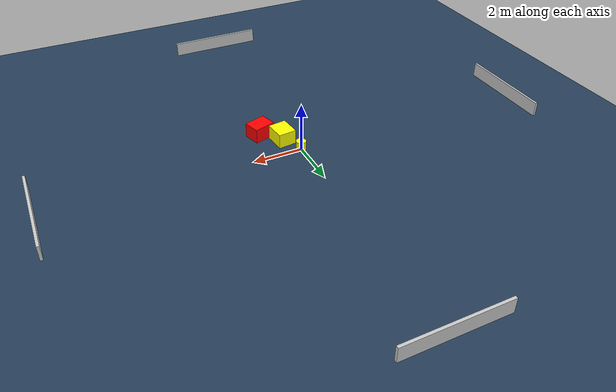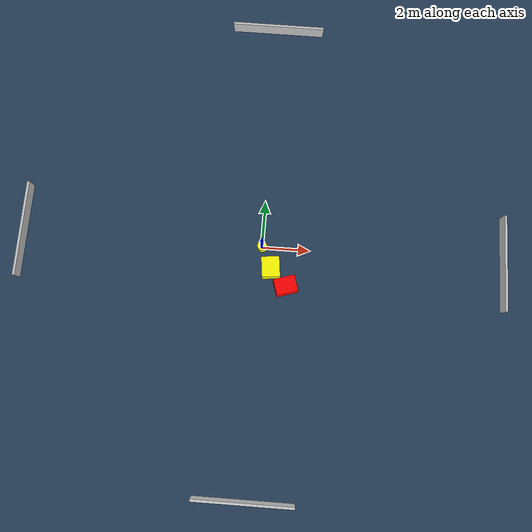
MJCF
<?xml version="1.0" ?>
<mujoco model="generated_environment">
  <option timestep="0.01" integrator="RK4" cone="elliptic"/>
  <default>
    <geom density="1"/>
  </default>
  <asset>
    <texture builtin="gradient" height="3072" name="skybox" rgb1="0.3 0.5 0.7" rgb2="0 0 0" type="skybox" width="512"/>
    <texture builtin="checker" height="300" name="groundplane" rgb1="0.2 0.3 0.4" rgb2="0.1 0.2 0.3" type="2d" width="300"/>
    <material name="groundplane" reflectance="0.2" texrepeat="5 5" texture="groundplane"/>
  </asset>
  <worldbody>
    <light dir="0 0 -1" directional="true" pos="0 0 1.5"/>
    <geom condim="3" friction="0.5 0.005 0.001" material="groundplane" name="floor" pos="0 0 0" size="0 0 0.05" type="plane"/>
    <body name="walls">
      <geom name="wall_1" condim="4" pos="-10.0 0.0 0.3" rgba="0.800000011920929 0.800000011920929 0.800000011920929 1.0" size="0.05 2.0 0.3" type="box"/>
      <geom name="wall_2" condim="4" pos="10.0 0.0 0.3" rgba="0.800000011920929 0.800000011920929 0.800000011920929 1.0" size="0.05 2.0 0.3" type="box"/>
      <geom name="wall_3" condim="4" pos="0.0 -10.0 0.3" rgba="0.800000011920929 0.800000011920929 0.800000011920929 1.0" size="2.0 0.05 0.3" type="box"/>
      <geom name="wall_4" condim="4" pos="0.0 10.0 0.3" rgba="0.800000011920929 0.800000011920929 0.800000011920929 1.0" size="2.0 0.05 0.3" type="box"/>
    </body>
    <body name="robot">
      <joint name="joint_x" type="slide" pos="0 0 0" axis="1 0 0"/>
      <joint name="joint_y" type="slide" pos="0 0 0" axis="0 1 0"/>
      <geom name="robot" type="cylinder" pos="0.0 0.0 0.2" size="0.2 0.2 0.0" mass="5.0" friction="1.0 0.005 0.0001" condim="4" rgba="1.0 1.0 0.0 1.0"/>
    </body>
    <body name="obstacle_1_movable">
      <geom name="obstacle_1_movable" condim="4" pos="0.4126396524943473 -0.8702497211119662 0.3" euler="0 0 6.367514915730599" friction="0.0 0.005 0.001" rgba="1.0 1.0 0.0 1.0" size="0.36889978794253875 0.4204352868338542 0.3" type="box" mass="0.1"/>
      <joint type="free"/>
    </body>
    <body name="obstacle_2_static">
      <geom name="obstacle_2_static" condim="4" pos="1.0758018107666325 -1.5879601575115831 0.3" euler="0 0 17.155187383294678" friction="0.0 0.005 0.001" rgba="1.0 0.0 0.0 1.0" size="0.44551633518798717 0.34125441007392154 0.3" type="box"/>
    </body>
  </worldbody>
  <actuator>
    <motor name="actuator_x" joint="joint_x" gear="1" ctrlrange="-1 1"/>
    <motor name="actuator_y" joint="joint_y" gear="1" ctrlrange="-1 1"/>
  </actuator>
</mujoco>
